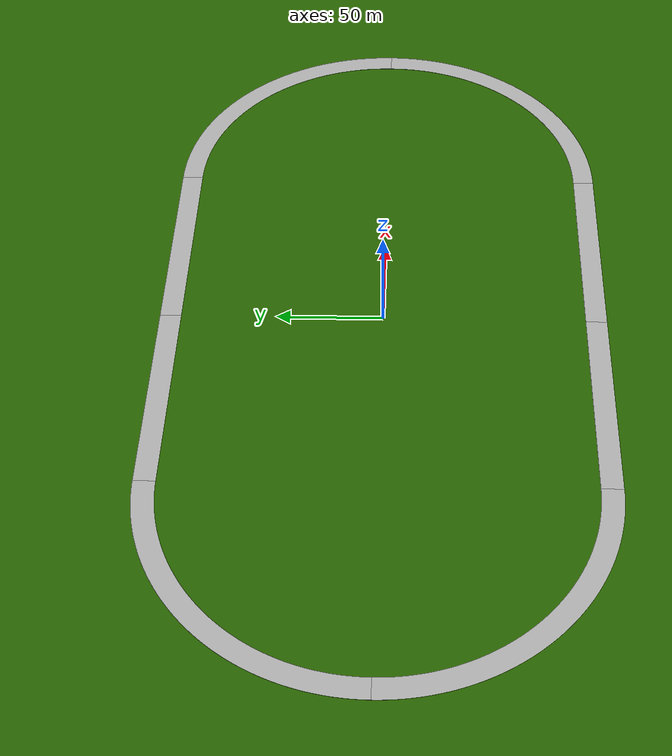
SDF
<?xml version="1.0"?>
<sdf version='1.11'>
  <world name='oval_track'>
    <!-- Common settings-->
    <plugin name='gz::sim::systems::Physics' filename='gz-sim-physics-system'/>
    <plugin name='gz::sim::systems::UserCommands' filename='gz-sim-user-commands-system'/>
    <plugin name='gz::sim::systems::SceneBroadcaster' filename='gz-sim-scene-broadcaster-system'/>
    <plugin name='gz::sim::systems::Contact' filename='gz-sim-contact-system'/>
    <plugin name='gz::sim::systems::Sensors' filename='gz-sim-sensors-system'>
      <render_engine>ogre</render_engine>
    </plugin>
    <physics name='1ms' type='ignored'>
      <max_step_size>0.001</max_step_size>
      <real_time_factor>1</real_time_factor>
      <real_time_update_rate>1000</real_time_update_rate>
    </physics>
    <light name='sun' type='directional'>
      <pose>0 0 10 0 -0 0</pose>
      <cast_shadows>true</cast_shadows>
      <intensity>1</intensity>
      <direction>-0.5 0.1 -0.9</direction>
      <diffuse>0.8 0.8 0.8 1</diffuse>
      <specular>0.2 0.2 0.2 1</specular>
      <attenuation>
        <range>1000</range>
        <linear>0.01</linear>
        <constant>0.90000000000000002</constant>
        <quadratic>0.001</quadratic>
      </attenuation>
      <spot>
        <inner_angle>0</inner_angle>
        <outer_angle>0</outer_angle>
        <falloff>0</falloff>
      </spot>
    </light>

    <!-- GUI settings for road world simulations -->
    <gui fullscreen="0">
      <plugin filename="GzScene3D" name="3D View">
        <ignition-gui>
          <title>3D View</title>
          <property type="bool" key="showTitleBar">false</property>
          <property type="string" key="state">docked</property>
        </ignition-gui>

        <engine>ogre</engine>
        <scene>scene</scene>
        <ambient_light>0.4 0.4 0.4</ambient_light>
        <background_color>0.5 0.8 0.95</background_color>
        <camera_pose>0 0 300 0 1.57 0</camera_pose>
        <camera_clip>
          <near>1.5</near>
          <far>5000</far>
        </camera_clip>
      </plugin>
      <plugin filename="WorldControl" name="World control">
        <ignition-gui>
          <title>World control</title>
          <property type="bool" key="showTitleBar">false</property>
          <property type="bool" key="resizable">false</property>
          <property type="double" key="height">72</property>
          <property type="double" key="width">121</property>
          <property type="double" key="z">1</property>

          <property type="string" key="state">floating</property>
          <anchors target="3D View">
            <line own="left" target="left"/>
            <line own="bottom" target="bottom"/>
          </anchors>
        </ignition-gui>

        <play_pause>true</play_pause>
        <step>true</step>
        <start_paused>true</start_paused>

      </plugin>
    </gui>
    <scene>
      <ambient>0.4 0.4 0.4 1</ambient>
      <background>0.529 0.808 0.98 1</background>
      <shadows>false</shadows>
      <grid>false</grid>
    </scene>
    <model name='ground_plane'>
      <static>true</static>
      <link name='link'>
        <collision name='collision'>
          <geometry>
            <plane>
              <normal>0 0 1</normal>
              <size>1000 1000</size>
            </plane>
          </geometry>
          <surface>
            <friction>
              <ode/>
            </friction>
            <bounce/>
            <contact/>
          </surface>
        </collision>
        <visual name='visual'>
          <geometry>
            <plane>
              <normal>0 0 1</normal>
              <size>1000 1000</size>
            </plane>
          </geometry>
          <material>
            <ambient>0.164 0.405 0.0 1</ambient>
            <diffuse>0.164 0.405 0.0 1</diffuse>
            <specular>0.8 0.8 0.8 1</specular>
          </material>
        </visual>
        <pose>0 0 0 0 -0 0</pose>
        <inertial>
          <pose>0 0 0 0 -0 0</pose>
          <mass>1</mass>
          <inertia>
            <ixx>1</ixx>
            <ixy>0</ixy>
            <ixz>0</ixz>
            <iyy>1</iyy>
            <iyz>0</iyz>
            <izz>1</izz>
          </inertia>
        </inertial>
        <enable_wind>false</enable_wind>
      </link>
      <pose>0 0 0 0 -0 0</pose>
      <self_collide>false</self_collide>
    </model>

    <!-- Include if IMU sensors exist -->
    <plugin filename="gz-sim-imu-system" name="gz::sim::systems::Imu" />
    <gravity>0 0 -9.8</gravity>
    <magnetic_field>6e-06 2.3e-05 -4.2e-05</magnetic_field>
    <atmosphere type='adiabatic'/>

    <!-- Include if GNSS sensors exist -->
    <plugin filename="gz-sim-navsat-system" name="gz::sim::systems::NavSat"/>
    <spherical_coordinates>
      <surface_model>EARTH_WGS84</surface_model>
      <world_frame_orientation>ENU</world_frame_orientation>
      <latitude_deg>45.0</latitude_deg>
      <longitude_deg>-81.0</longitude_deg>
      <elevation>0.0</elevation>
      <heading_deg>0.0</heading_deg>
    </spherical_coordinates>

    <model name="straight_1">
      <static>true</static>
      <self_collide>false</self_collide>
      <pose>-100 -100 0 0 0 0</pose>
      <include merge="true">
        <uri>package://ece5532_gazebo/models/straight_road_100m</uri>
      </include>
    </model>

    <model name="straight_2">
      <static>true</static>
      <self_collide>false</self_collide>
      <pose>0 -100 0 0 0 0</pose>
      <include merge="true">
        <uri>package://ece5532_gazebo/models/straight_road_100m</uri>
      </include>
    </model>

    <model name="curve_1">
      <static>true</static>
      <self_collide>false</self_collide>
      <pose>200 0 0 0 0 -1.57079632679</pose>
      <include merge="true">
        <uri>package://ece5532_gazebo/models/curved_road_100m</uri>
      </include>
    </model>

    <model name="curve_2">
      <static>true</static>
      <self_collide>false</self_collide>
      <pose>100 100 0 0 0 0</pose>
      <include merge="true">
        <uri>package://ece5532_gazebo/models/curved_road_100m</uri>
      </include>
    </model>

    <model name="straight_3">
      <static>true</static>
      <self_collide>false</self_collide>
      <pose>0 100 0 0 0 0</pose>
      <include merge="true">
        <uri>package://ece5532_gazebo/models/straight_road_100m</uri>
      </include>
    </model>

    <model name="straight_4">
      <static>true</static>
      <self_collide>false</self_collide>
      <pose>-100 100 0 0 0 0</pose>
      <include merge="true">
        <uri>package://ece5532_gazebo/models/straight_road_100m</uri>
      </include>
    </model>

    <model name="curve_3">
      <static>true</static>
      <self_collide>false</self_collide>
      <pose>-200 0 0 0 0 1.57079632679</pose>
      <include merge="true">
        <uri>package://ece5532_gazebo/models/curved_road_100m</uri>
      </include>
    </model>

    <model name="curve_4">
      <static>true</static>
      <self_collide>false</self_collide>
      <pose>-100 -100 0 0 0 3.14159265359</pose>
      <include merge="true">
        <uri>package://ece5532_gazebo/models/curved_road_100m</uri>
      </include>
    </model>

    <!-- pi = 3.14159265359 -->
    <!-- pi/2 = 1.57079632679-->
  </world>
</sdf>

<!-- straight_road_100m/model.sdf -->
<sdf version='1.11'>
  <model name='straight_road_100m'>
    <pose>0 0 0 0 0 0</pose>
    <link name='road'>
      <pose>0 0 0 0 0 0</pose>
      <visual name='road_visual'>
        <pose>0 0 0 0 0 0</pose>
        <geometry>
          <mesh>
            <uri>package://ece5532_gazebo/models/straight_road_100m/meshes/two_way_two_lane.obj</uri>
          </mesh>
        </geometry>
      </visual>
      <collision name='road_collision'>
        <pose>0 0 0 0 0 0</pose>
        <geometry>
          <mesh>
            <uri>package://ece5532_gazebo/models/straight_road_100m/meshes/two_way_two_lane.obj</uri>
          </mesh>
        </geometry>
      </collision>
    </link>
    <static>1</static>
  </model>
</sdf>

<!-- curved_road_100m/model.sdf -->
<sdf version='1.11'>
  <model name='curved_road_100m'>
    <pose>0 0 0 0 0 0</pose>
    <link name='road'>
      <pose>0 0 0 0 0 0</pose>
      <visual name='road_visual'>
        <pose>0 0 0 0 0 0</pose>
        <geometry>
          <mesh>
            <uri>package://ece5532_gazebo/models/curved_road_100m/meshes/two_way_two_lane.obj</uri>
          </mesh>
        </geometry>
      </visual>
      <collision name='road_collision'>
        <pose>0 0 0 0 0 0</pose>
        <geometry>
          <mesh>
            <uri>package://ece5532_gazebo/models/curved_road_100m/meshes/two_way_two_lane.obj</uri>
          </mesh>
        </geometry>
      </collision>
    </link>
    <static>1</static>
  </model>
</sdf>
